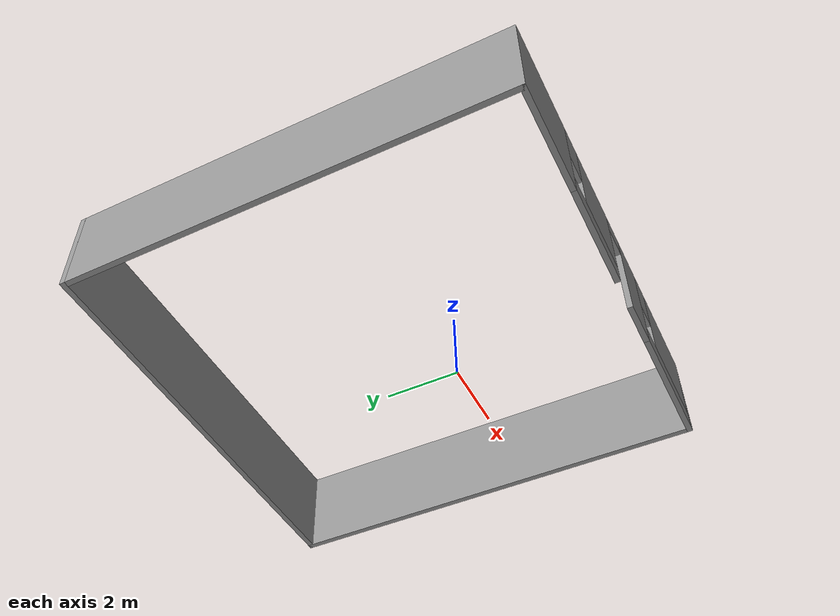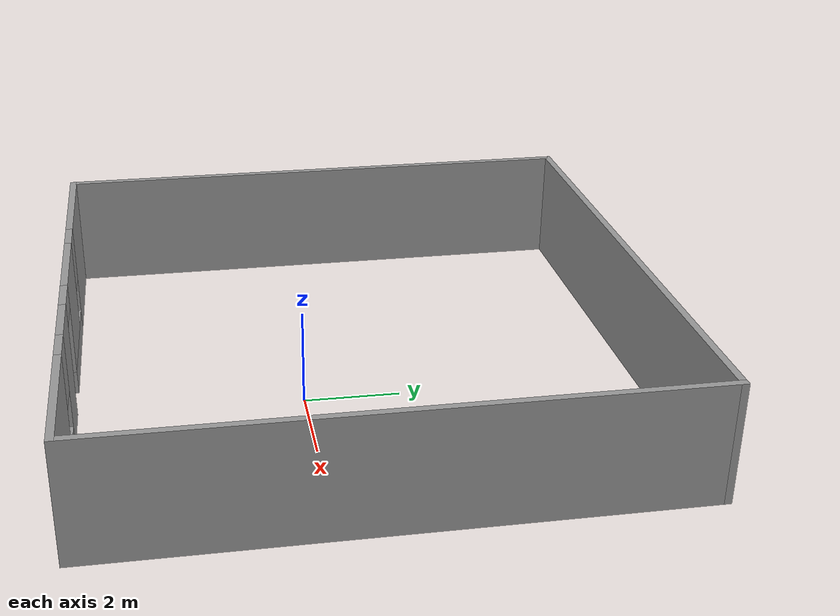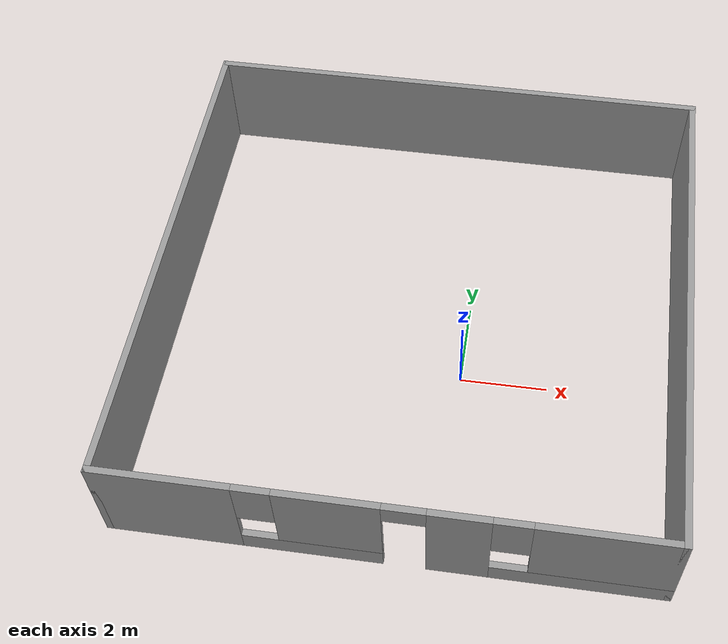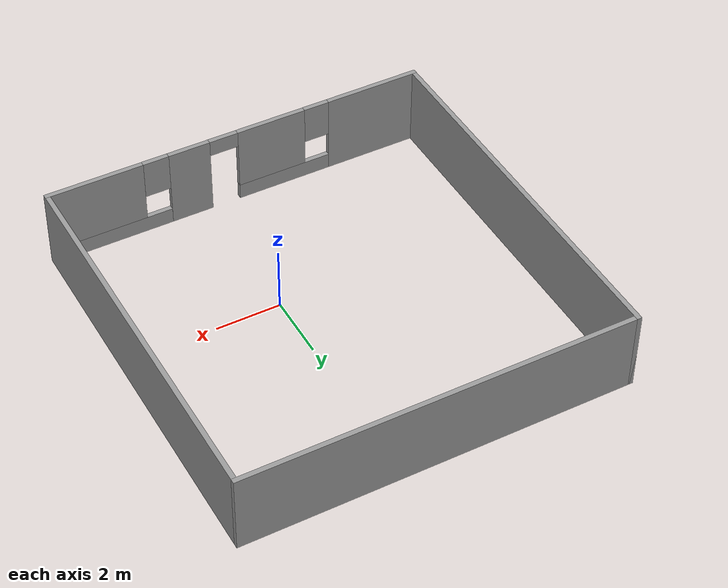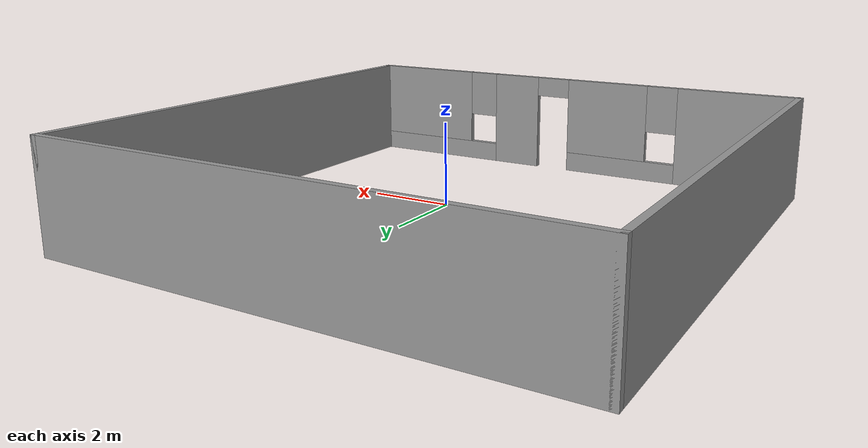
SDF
<?xml version='1.0'?>
<sdf version='1.7'>
  <model name='Untitled'>
    <pose>-1.05729 1.21669 0 0 -0 0</pose>
    <link name='Wall_11'>
      <pose>0 -5.925 0 0 -0 0</pose>
      <visual name='Wall_11_Visual_0'>
        <pose>-4.49955 0 1.25 0 -0 0</pose>
        <geometry>
          <box>
            <size>3.00089 0.15 2.5</size>
          </box>
        </geometry>
        <material>
          <script>
            <uri>file://media/materials/scripts/gazebo.material</uri>
            <name>Gazebo/Grey</name>
          </script>
          <ambient>1 1 1 1</ambient>
        </material>
        <meta>
          <layer>0</layer>
        </meta>
      </visual>
      <collision name='Wall_11_Collision_0'>
        <geometry>
          <box>
            <size>3.00089 0.15 2.5</size>
          </box>
        </geometry>
        <pose>-4.49955 0 1.25 0 -0 0</pose>
      </collision>
      <visual name='Wall_11_Visual_1'>
        <pose>1.54622 0 1.25 0 -0 0</pose>
        <geometry>
          <box>
            <size>1.30418 0.15 2.5</size>
          </box>
        </geometry>
        <material>
          <script>
            <uri>file://media/materials/scripts/gazebo.material</uri>
            <name>Gazebo/Grey</name>
          </script>
          <ambient>1 1 1 1</ambient>
        </material>
        <meta>
          <layer>0</layer>
        </meta>
      </visual>
      <collision name='Wall_11_Collision_1'>
        <geometry>
          <box>
            <size>1.30418 0.15 2.5</size>
          </box>
        </geometry>
        <pose>1.54622 0 1.25 0 -0 0</pose>
      </collision>
      <visual name='Wall_11_Visual_2'>
        <pose>-1.50249 0 0.25 0 -0 0</pose>
        <geometry>
          <box>
            <size>2.99324 0.15 0.5</size>
          </box>
        </geometry>
        <material>
          <script>
            <uri>file://media/materials/scripts/gazebo.material</uri>
            <name>Gazebo/Grey</name>
          </script>
          <ambient>1 1 1 1</ambient>
        </material>
        <meta>
          <layer>0</layer>
        </meta>
      </visual>
      <collision name='Wall_11_Collision_2'>
        <geometry>
          <box>
            <size>2.99324 0.15 0.5</size>
          </box>
        </geometry>
        <pose>-1.50249 0 0.25 0 -0 0</pose>
      </collision>
      <visual name='Wall_11_Visual_3'>
        <pose>4.09916 0 0.25 0 -0 0</pose>
        <geometry>
          <box>
            <size>3.80168 0.15 0.5</size>
          </box>
        </geometry>
        <material>
          <script>
            <uri>file://media/materials/scripts/gazebo.material</uri>
            <name>Gazebo/Grey</name>
          </script>
          <ambient>1 1 1 1</ambient>
        </material>
        <meta>
          <layer>0</layer>
        </meta>
      </visual>
      <collision name='Wall_11_Collision_3'>
        <geometry>
          <box>
            <size>3.80168 0.15 0.5</size>
          </box>
        </geometry>
        <pose>4.09916 0 0.25 0 -0 0</pose>
      </collision>
      <visual name='Wall_11_Visual_4'>
        <pose>-1.10249 0 1.5 0 -0 0</pose>
        <geometry>
          <box>
            <size>2.19324 0.15 2</size>
          </box>
        </geometry>
        <material>
          <script>
            <uri>file://media/materials/scripts/gazebo.material</uri>
            <name>Gazebo/Grey</name>
          </script>
          <ambient>1 1 1 1</ambient>
        </material>
        <meta>
          <layer>0</layer>
        </meta>
      </visual>
      <collision name='Wall_11_Collision_4'>
        <geometry>
          <box>
            <size>2.19324 0.15 2</size>
          </box>
        </geometry>
        <pose>-1.10249 0 1.5 0 -0 0</pose>
      </collision>
      <visual name='Wall_11_Visual_5'>
        <pose>-1.10249 0 1.5 0 -0 0</pose>
        <geometry>
          <box>
            <size>2.19324 0.15 2</size>
          </box>
        </geometry>
        <material>
          <script>
            <uri>file://media/materials/scripts/gazebo.material</uri>
            <name>Gazebo/Grey</name>
          </script>
          <ambient>1 1 1 1</ambient>
        </material>
        <meta>
          <layer>0</layer>
        </meta>
      </visual>
      <collision name='Wall_11_Collision_5'>
        <geometry>
          <box>
            <size>2.19324 0.15 2</size>
          </box>
        </geometry>
        <pose>-1.10249 0 1.5 0 -0 0</pose>
      </collision>
      <visual name='Wall_11_Visual_6'>
        <pose>4.49916 0 1.5 0 -0 0</pose>
        <geometry>
          <box>
            <size>3.00168 0.15 2</size>
          </box>
        </geometry>
        <material>
          <script>
            <uri>file://media/materials/scripts/gazebo.material</uri>
            <name>Gazebo/Grey</name>
          </script>
          <ambient>1 1 1 1</ambient>
        </material>
        <meta>
          <layer>0</layer>
        </meta>
      </visual>
      <collision name='Wall_11_Collision_6'>
        <geometry>
          <box>
            <size>3.00168 0.15 2</size>
          </box>
        </geometry>
        <pose>4.49916 0 1.5 0 -0 0</pose>
      </collision>
      <visual name='Wall_11_Visual_7'>
        <pose>-2.59911 0 1.9 0 -0 0</pose>
        <geometry>
          <box>
            <size>0.8 0.15 1.2</size>
          </box>
        </geometry>
        <material>
          <script>
            <uri>file://media/materials/scripts/gazebo.material</uri>
            <name>Gazebo/Grey</name>
          </script>
          <ambient>1 1 1 1</ambient>
        </material>
        <meta>
          <layer>0</layer>
        </meta>
      </visual>
      <collision name='Wall_11_Collision_7'>
        <geometry>
          <box>
            <size>0.8 0.15 1.2</size>
          </box>
        </geometry>
        <pose>-2.59911 0 1.9 0 -0 0</pose>
      </collision>
      <visual name='Wall_11_Visual_8'>
        <pose>2.59832 0 1.9 0 -0 0</pose>
        <geometry>
          <box>
            <size>0.8 0.15 1.2</size>
          </box>
        </geometry>
        <material>
          <script>
            <uri>file://media/materials/scripts/gazebo.material</uri>
            <name>Gazebo/Grey</name>
          </script>
          <ambient>1 1 1 1</ambient>
        </material>
        <meta>
          <layer>0</layer>
        </meta>
      </visual>
      <collision name='Wall_11_Collision_8'>
        <geometry>
          <box>
            <size>0.8 0.15 1.2</size>
          </box>
        </geometry>
        <pose>2.59832 0 1.9 0 -0 0</pose>
      </collision>
      <visual name='Wall_11_Visual_9'>
        <pose>0.444135 0 2.25 0 -0 0</pose>
        <geometry>
          <box>
            <size>0.9 0.15 0.5</size>
          </box>
        </geometry>
        <material>
          <script>
            <uri>file://media/materials/scripts/gazebo.material</uri>
            <name>Gazebo/Grey</name>
          </script>
          <ambient>1 1 1 1</ambient>
        </material>
        <meta>
          <layer>0</layer>
        </meta>
      </visual>
      <collision name='Wall_11_Collision_9'>
        <geometry>
          <box>
            <size>0.9 0.15 0.5</size>
          </box>
        </geometry>
        <pose>0.444135 0 2.25 0 -0 0</pose>
      </collision>
      <visual name='Wall_11_Visual_10'>
        <pose>0.444135 0 2.25 0 -0 0</pose>
        <geometry>
          <box>
            <size>0.9 0.15 0.5</size>
          </box>
        </geometry>
        <material>
          <script>
            <uri>file://media/materials/scripts/gazebo.material</uri>
            <name>Gazebo/Grey</name>
          </script>
          <ambient>1 1 1 1</ambient>
        </material>
        <meta>
          <layer>0</layer>
        </meta>
      </visual>
      <collision name='Wall_11_Collision_10'>
        <geometry>
          <box>
            <size>0.9 0.15 0.5</size>
          </box>
        </geometry>
        <pose>0.444135 0 2.25 0 -0 0</pose>
      </collision>
    </link>
    <link name='Wall_12'>
      <collision name='Wall_12_Collision'>
        <geometry>
          <box>
            <size>12 0.15 2.5</size>
          </box>
        </geometry>
        <pose>0 0 1.25 0 -0 0</pose>
      </collision>
      <visual name='Wall_12_Visual'>
        <pose>0 0 1.25 0 -0 0</pose>
        <geometry>
          <box>
            <size>12 0.15 2.5</size>
          </box>
        </geometry>
        <material>
          <script>
            <uri>file://media/materials/scripts/gazebo.material</uri>
            <name>Gazebo/Grey</name>
          </script>
          <ambient>1 1 1 1</ambient>
        </material>
        <meta>
          <layer>0</layer>
        </meta>
      </visual>
      <pose>5.925 0 0 0 -0 1.5708</pose>
    </link>
    <link name='Wall_2'>
      <collision name='Wall_2_Collision'>
        <geometry>
          <box>
            <size>12 0.15 2.5</size>
          </box>
        </geometry>
        <pose>0 0 1.25 0 -0 0</pose>
      </collision>
      <visual name='Wall_2_Visual'>
        <pose>0 0 1.25 0 -0 0</pose>
        <geometry>
          <box>
            <size>12 0.15 2.5</size>
          </box>
        </geometry>
        <material>
          <script>
            <uri>file://media/materials/scripts/gazebo.material</uri>
            <name>Gazebo/Grey</name>
          </script>
          <ambient>1 1 1 1</ambient>
        </material>
        <meta>
          <layer>0</layer>
        </meta>
      </visual>
      <pose>0 5.925 0 0 -0 0</pose>
    </link>
    <link name='Wall_9'>
      <collision name='Wall_9_Collision'>
        <geometry>
          <box>
            <size>12 0.15 2.5</size>
          </box>
        </geometry>
        <pose>0 0 1.25 0 -0 0</pose>
      </collision>
      <visual name='Wall_9_Visual'>
        <pose>0 0 1.25 0 -0 0</pose>
        <geometry>
          <box>
            <size>12 0.15 2.5</size>
          </box>
        </geometry>
        <material>
          <script>
            <uri>file://media/materials/scripts/gazebo.material</uri>
            <name>Gazebo/Grey</name>
          </script>
          <ambient>1 1 1 1</ambient>
        </material>
        <meta>
          <layer>0</layer>
        </meta>
      </visual>
      <pose>-5.925 0 0 0 -0 -1.5708</pose>
    </link>
    <static>1</static>
  </model>
</sdf>
